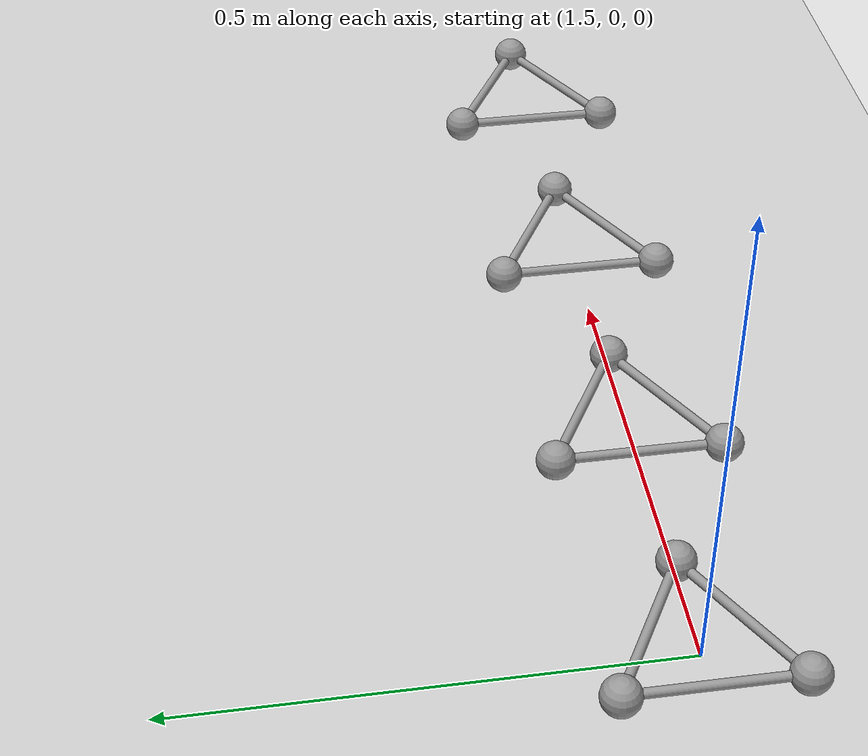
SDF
<sdf version="1.6">
 <world name="default">
  <include><uri>model://ground_plane</uri></include>
  <include><uri>model://sun</uri></include>
  <model name="triball_5">
   <pose>1.5 0 0 0 0 0</pose>
   <link name="link">
    <pose>0 0 0.02 0 0 0</pose>
    <inertial>
     <mass>0.060318578948924034</mass>
     <inertia>
      <ixx>0.000311243867376448</ixx>
      <iyy>0.000311243867376448</iyy>
      <izz>0.0006128367621210681</izz>
      <ixy>0.0</ixy>
      <ixz>0.0</ixz>
      <iyz>0.0</iyz>
     </inertia>
    </inertial>
    <sensor name="imu" type="imu"><always_on>true</always_on></sensor>
    <collision name="collision_a">
     <pose>0.09999999999999999 0 0  0 0 0</pose>
     <geometry><sphere><radius>0.02</radius></sphere></geometry>
     <surface><friction><ode><mu>0.9</mu><mu2>0.9</mu2><fdir1>1 0 0</fdir1></ode></friction></surface>
    </collision>
    <visual name="visual_a">
     <pose>0.09999999999999999 0 0  0 0 0</pose>
     <geometry><sphere><radius>0.02</radius></sphere></geometry>
     <material>
      <script><uri>file://media/materials/scripts/gazebo.material</uri><name>Gazebo/Grey</name></script>
     </material>
    </visual>
    <collision name="collision_a_to_b">
     <pose>0.024999999999999998 0.04330127018922193 0.0  -1.5707962969925737 -1.0471975511965974 1.047197525387029</pose>
     <geometry><cylinder><radius>0.005</radius><length>0.17320508075688773</length></cylinder></geometry>
     <surface><friction><ode><mu>0.9</mu><mu2>0.9</mu2></ode></friction></surface>
    </collision>
    <visual name="visual_a_to_b">
     <pose>0.024999999999999998 0.04330127018922193 0.0  -1.5707962969925737 -1.0471975511965974 1.047197525387029</pose>
     <geometry><cylinder><radius>0.005</radius><length>0.17320508075688773</length></cylinder></geometry>
     <material>
      <script><uri>file://media/materials/scripts/gazebo.material</uri><name>Gazebo/Grey</name></script>
     </material>
    </visual>
    <collision name="collision_a_to_c">
     <pose>0.024999999999999998 -0.04330127018922193 0.0  1.5707962969925737 -1.0471975511965974 -1.047197525387029</pose>
     <geometry><cylinder><radius>0.005</radius><length>0.17320508075688773</length></cylinder></geometry>
     <surface><friction><ode><mu>0.9</mu><mu2>0.9</mu2></ode></friction></surface>
    </collision>
    <visual name="visual_a_to_c">
     <pose>0.024999999999999998 -0.04330127018922193 0.0  1.5707962969925737 -1.0471975511965974 -1.047197525387029</pose>
     <geometry><cylinder><radius>0.005</radius><length>0.17320508075688773</length></cylinder></geometry>
     <material>
      <script><uri>file://media/materials/scripts/gazebo.material</uri><name>Gazebo/Grey</name></script>
     </material>
    </visual>
    <collision name="collision_b">
     <pose>-0.049999999999999996 0.08660254037844387 0  0 0 0</pose>
     <geometry><sphere><radius>0.02</radius></sphere></geometry>
     <surface><friction><ode><mu>0.9</mu><mu2>0.9</mu2><fdir1>1 0 0</fdir1></ode></friction></surface>
    </collision>
    <visual name="visual_b">
     <pose>-0.049999999999999996 0.08660254037844387 0  0 0 0</pose>
     <geometry><sphere><radius>0.02</radius></sphere></geometry>
     <material>
      <script><uri>file://media/materials/scripts/gazebo.material</uri><name>Gazebo/Grey</name></script>
     </material>
    </visual>
    <collision name="collision_b_to_c">
     <pose>-0.049999999999999996 0.0 0.0  1.5707963267948963 -0.0 0.0</pose>
     <geometry><cylinder><radius>0.005</radius><length>0.17320508075688773</length></cylinder></geometry>
     <surface><friction><ode><mu>0.9</mu><mu2>0.9</mu2></ode></friction></surface>
    </collision>
    <visual name="visual_b_to_c">
     <pose>-0.049999999999999996 0.0 0.0  1.5707963267948963 -0.0 0.0</pose>
     <geometry><cylinder><radius>0.005</radius><length>0.17320508075688773</length></cylinder></geometry>
     <material>
      <script><uri>file://media/materials/scripts/gazebo.material</uri><name>Gazebo/Grey</name></script>
     </material>
    </visual>
    <collision name="collision_c">
     <pose>-0.049999999999999996 -0.08660254037844387 0  0 0 0</pose>
     <geometry><sphere><radius>0.02</radius></sphere></geometry>
     <surface><friction><ode><mu>0.9</mu><mu2>0.9</mu2><fdir1>1 0 0</fdir1></ode></friction></surface>
    </collision>
    <visual name="visual_c">
     <pose>-0.049999999999999996 -0.08660254037844387 0  0 0 0</pose>
     <geometry><sphere><radius>0.02</radius></sphere></geometry>
     <material>
      <script><uri>file://media/materials/scripts/gazebo.material</uri><name>Gazebo/Grey</name></script>
     </material>
    </visual>
   </link>
   <plugin name="triball_5" filename="libInitialVelocityPlugin.so">
    <linear>0 15 0</linear>
    <angular>0 0 -103.125</angular>
   </plugin>
  </model>
  <model name="triball_6">
   <pose>1.7999999999999998 0 0 0 0 0</pose>
   <link name="link">
    <pose>0 0 0.02 0 0 0</pose>
    <inertial>
     <mass>0.060318578948924034</mass>
     <inertia>
      <ixx>0.000311243867376448</ixx>
      <iyy>0.000311243867376448</iyy>
      <izz>0.0006128367621210681</izz>
      <ixy>0.0</ixy>
      <ixz>0.0</ixz>
      <iyz>0.0</iyz>
     </inertia>
    </inertial>
    <sensor name="imu" type="imu"><always_on>true</always_on></sensor>
    <collision name="collision_a">
     <pose>0.09999999999999999 0 0  0 0 0</pose>
     <geometry><sphere><radius>0.02</radius></sphere></geometry>
     <surface><friction><ode><mu>0.9</mu><mu2>0.9</mu2><fdir1>1 0 0</fdir1></ode></friction></surface>
    </collision>
    <visual name="visual_a">
     <pose>0.09999999999999999 0 0  0 0 0</pose>
     <geometry><sphere><radius>0.02</radius></sphere></geometry>
     <material>
      <script><uri>file://media/materials/scripts/gazebo.material</uri><name>Gazebo/Grey</name></script>
     </material>
    </visual>
    <collision name="collision_a_to_b">
     <pose>0.024999999999999998 0.04330127018922193 0.0  -1.5707962969925737 -1.0471975511965974 1.047197525387029</pose>
     <geometry><cylinder><radius>0.005</radius><length>0.17320508075688773</length></cylinder></geometry>
     <surface><friction><ode><mu>0.9</mu><mu2>0.9</mu2></ode></friction></surface>
    </collision>
    <visual name="visual_a_to_b">
     <pose>0.024999999999999998 0.04330127018922193 0.0  -1.5707962969925737 -1.0471975511965974 1.047197525387029</pose>
     <geometry><cylinder><radius>0.005</radius><length>0.17320508075688773</length></cylinder></geometry>
     <material>
      <script><uri>file://media/materials/scripts/gazebo.material</uri><name>Gazebo/Grey</name></script>
     </material>
    </visual>
    <collision name="collision_a_to_c">
     <pose>0.024999999999999998 -0.04330127018922193 0.0  1.5707962969925737 -1.0471975511965974 -1.047197525387029</pose>
     <geometry><cylinder><radius>0.005</radius><length>0.17320508075688773</length></cylinder></geometry>
     <surface><friction><ode><mu>0.9</mu><mu2>0.9</mu2></ode></friction></surface>
    </collision>
    <visual name="visual_a_to_c">
     <pose>0.024999999999999998 -0.04330127018922193 0.0  1.5707962969925737 -1.0471975511965974 -1.047197525387029</pose>
     <geometry><cylinder><radius>0.005</radius><length>0.17320508075688773</length></cylinder></geometry>
     <material>
      <script><uri>file://media/materials/scripts/gazebo.material</uri><name>Gazebo/Grey</name></script>
     </material>
    </visual>
    <collision name="collision_b">
     <pose>-0.049999999999999996 0.08660254037844387 0  0 0 0</pose>
     <geometry><sphere><radius>0.02</radius></sphere></geometry>
     <surface><friction><ode><mu>0.9</mu><mu2>0.9</mu2><fdir1>1 0 0</fdir1></ode></friction></surface>
    </collision>
    <visual name="visual_b">
     <pose>-0.049999999999999996 0.08660254037844387 0  0 0 0</pose>
     <geometry><sphere><radius>0.02</radius></sphere></geometry>
     <material>
      <script><uri>file://media/materials/scripts/gazebo.material</uri><name>Gazebo/Grey</name></script>
     </material>
    </visual>
    <collision name="collision_b_to_c">
     <pose>-0.049999999999999996 0.0 0.0  1.5707963267948963 -0.0 0.0</pose>
     <geometry><cylinder><radius>0.005</radius><length>0.17320508075688773</length></cylinder></geometry>
     <surface><friction><ode><mu>0.9</mu><mu2>0.9</mu2></ode></friction></surface>
    </collision>
    <visual name="visual_b_to_c">
     <pose>-0.049999999999999996 0.0 0.0  1.5707963267948963 -0.0 0.0</pose>
     <geometry><cylinder><radius>0.005</radius><length>0.17320508075688773</length></cylinder></geometry>
     <material>
      <script><uri>file://media/materials/scripts/gazebo.material</uri><name>Gazebo/Grey</name></script>
     </material>
    </visual>
    <collision name="collision_c">
     <pose>-0.049999999999999996 -0.08660254037844387 0  0 0 0</pose>
     <geometry><sphere><radius>0.02</radius></sphere></geometry>
     <surface><friction><ode><mu>0.9</mu><mu2>0.9</mu2><fdir1>1 0 0</fdir1></ode></friction></surface>
    </collision>
    <visual name="visual_c">
     <pose>-0.049999999999999996 -0.08660254037844387 0  0 0 0</pose>
     <geometry><sphere><radius>0.02</radius></sphere></geometry>
     <material>
      <script><uri>file://media/materials/scripts/gazebo.material</uri><name>Gazebo/Grey</name></script>
     </material>
    </visual>
   </link>
   <plugin name="triball_6" filename="libInitialVelocityPlugin.so">
    <linear>0 15 0</linear>
    <angular>0 0 -93.75</angular>
   </plugin>
  </model>
  <model name="triball_7">
   <pose>2.1 0 0 0 0 0</pose>
   <link name="link">
    <pose>0 0 0.02 0 0 0</pose>
    <inertial>
     <mass>0.060318578948924034</mass>
     <inertia>
      <ixx>0.000311243867376448</ixx>
      <iyy>0.000311243867376448</iyy>
      <izz>0.0006128367621210681</izz>
      <ixy>0.0</ixy>
      <ixz>0.0</ixz>
      <iyz>0.0</iyz>
     </inertia>
    </inertial>
    <sensor name="imu" type="imu"><always_on>true</always_on></sensor>
    <collision name="collision_a">
     <pose>0.09999999999999999 0 0  0 0 0</pose>
     <geometry><sphere><radius>0.02</radius></sphere></geometry>
     <surface><friction><ode><mu>0.9</mu><mu2>0.9</mu2><fdir1>1 0 0</fdir1></ode></friction></surface>
    </collision>
    <visual name="visual_a">
     <pose>0.09999999999999999 0 0  0 0 0</pose>
     <geometry><sphere><radius>0.02</radius></sphere></geometry>
     <material>
      <script><uri>file://media/materials/scripts/gazebo.material</uri><name>Gazebo/Grey</name></script>
     </material>
    </visual>
    <collision name="collision_a_to_b">
     <pose>0.024999999999999998 0.04330127018922193 0.0  -1.5707962969925737 -1.0471975511965974 1.047197525387029</pose>
     <geometry><cylinder><radius>0.005</radius><length>0.17320508075688773</length></cylinder></geometry>
     <surface><friction><ode><mu>0.9</mu><mu2>0.9</mu2></ode></friction></surface>
    </collision>
    <visual name="visual_a_to_b">
     <pose>0.024999999999999998 0.04330127018922193 0.0  -1.5707962969925737 -1.0471975511965974 1.047197525387029</pose>
     <geometry><cylinder><radius>0.005</radius><length>0.17320508075688773</length></cylinder></geometry>
     <material>
      <script><uri>file://media/materials/scripts/gazebo.material</uri><name>Gazebo/Grey</name></script>
     </material>
    </visual>
    <collision name="collision_a_to_c">
     <pose>0.024999999999999998 -0.04330127018922193 0.0  1.5707962969925737 -1.0471975511965974 -1.047197525387029</pose>
     <geometry><cylinder><radius>0.005</radius><length>0.17320508075688773</length></cylinder></geometry>
     <surface><friction><ode><mu>0.9</mu><mu2>0.9</mu2></ode></friction></surface>
    </collision>
    <visual name="visual_a_to_c">
     <pose>0.024999999999999998 -0.04330127018922193 0.0  1.5707962969925737 -1.0471975511965974 -1.047197525387029</pose>
     <geometry><cylinder><radius>0.005</radius><length>0.17320508075688773</length></cylinder></geometry>
     <material>
      <script><uri>file://media/materials/scripts/gazebo.material</uri><name>Gazebo/Grey</name></script>
     </material>
    </visual>
    <collision name="collision_b">
     <pose>-0.049999999999999996 0.08660254037844387 0  0 0 0</pose>
     <geometry><sphere><radius>0.02</radius></sphere></geometry>
     <surface><friction><ode><mu>0.9</mu><mu2>0.9</mu2><fdir1>1 0 0</fdir1></ode></friction></surface>
    </collision>
    <visual name="visual_b">
     <pose>-0.049999999999999996 0.08660254037844387 0  0 0 0</pose>
     <geometry><sphere><radius>0.02</radius></sphere></geometry>
     <material>
      <script><uri>file://media/materials/scripts/gazebo.material</uri><name>Gazebo/Grey</name></script>
     </material>
    </visual>
    <collision name="collision_b_to_c">
     <pose>-0.049999999999999996 0.0 0.0  1.5707963267948963 -0.0 0.0</pose>
     <geometry><cylinder><radius>0.005</radius><length>0.17320508075688773</length></cylinder></geometry>
     <surface><friction><ode><mu>0.9</mu><mu2>0.9</mu2></ode></friction></surface>
    </collision>
    <visual name="visual_b_to_c">
     <pose>-0.049999999999999996 0.0 0.0  1.5707963267948963 -0.0 0.0</pose>
     <geometry><cylinder><radius>0.005</radius><length>0.17320508075688773</length></cylinder></geometry>
     <material>
      <script><uri>file://media/materials/scripts/gazebo.material</uri><name>Gazebo/Grey</name></script>
     </material>
    </visual>
    <collision name="collision_c">
     <pose>-0.049999999999999996 -0.08660254037844387 0  0 0 0</pose>
     <geometry><sphere><radius>0.02</radius></sphere></geometry>
     <surface><friction><ode><mu>0.9</mu><mu2>0.9</mu2><fdir1>1 0 0</fdir1></ode></friction></surface>
    </collision>
    <visual name="visual_c">
     <pose>-0.049999999999999996 -0.08660254037844387 0  0 0 0</pose>
     <geometry><sphere><radius>0.02</radius></sphere></geometry>
     <material>
      <script><uri>file://media/materials/scripts/gazebo.material</uri><name>Gazebo/Grey</name></script>
     </material>
    </visual>
   </link>
   <plugin name="triball_7" filename="libInitialVelocityPlugin.so">
    <linear>0 15 0</linear>
    <angular>0 0 -84.375</angular>
   </plugin>
  </model>
  <model name="triball_8">
   <pose>2.4 0 0 0 0 0</pose>
   <link name="link">
    <pose>0 0 0.02 0 0 0</pose>
    <inertial>
     <mass>0.060318578948924034</mass>
     <inertia>
      <ixx>0.000311243867376448</ixx>
      <iyy>0.000311243867376448</iyy>
      <izz>0.0006128367621210681</izz>
      <ixy>0.0</ixy>
      <ixz>0.0</ixz>
      <iyz>0.0</iyz>
     </inertia>
    </inertial>
    <sensor name="imu" type="imu"><always_on>true</always_on></sensor>
    <collision name="collision_a">
     <pose>0.09999999999999999 0 0  0 0 0</pose>
     <geometry><sphere><radius>0.02</radius></sphere></geometry>
     <surface><friction><ode><mu>0.9</mu><mu2>0.9</mu2><fdir1>1 0 0</fdir1></ode></friction></surface>
    </collision>
    <visual name="visual_a">
     <pose>0.09999999999999999 0 0  0 0 0</pose>
     <geometry><sphere><radius>0.02</radius></sphere></geometry>
     <material>
      <script><uri>file://media/materials/scripts/gazebo.material</uri><name>Gazebo/Grey</name></script>
     </material>
    </visual>
    <collision name="collision_a_to_b">
     <pose>0.024999999999999998 0.04330127018922193 0.0  -1.5707962969925737 -1.0471975511965974 1.047197525387029</pose>
     <geometry><cylinder><radius>0.005</radius><length>0.17320508075688773</length></cylinder></geometry>
     <surface><friction><ode><mu>0.9</mu><mu2>0.9</mu2></ode></friction></surface>
    </collision>
    <visual name="visual_a_to_b">
     <pose>0.024999999999999998 0.04330127018922193 0.0  -1.5707962969925737 -1.0471975511965974 1.047197525387029</pose>
     <geometry><cylinder><radius>0.005</radius><length>0.17320508075688773</length></cylinder></geometry>
     <material>
      <script><uri>file://media/materials/scripts/gazebo.material</uri><name>Gazebo/Grey</name></script>
     </material>
    </visual>
    <collision name="collision_a_to_c">
     <pose>0.024999999999999998 -0.04330127018922193 0.0  1.5707962969925737 -1.0471975511965974 -1.047197525387029</pose>
     <geometry><cylinder><radius>0.005</radius><length>0.17320508075688773</length></cylinder></geometry>
     <surface><friction><ode><mu>0.9</mu><mu2>0.9</mu2></ode></friction></surface>
    </collision>
    <visual name="visual_a_to_c">
     <pose>0.024999999999999998 -0.04330127018922193 0.0  1.5707962969925737 -1.0471975511965974 -1.047197525387029</pose>
     <geometry><cylinder><radius>0.005</radius><length>0.17320508075688773</length></cylinder></geometry>
     <material>
      <script><uri>file://media/materials/scripts/gazebo.material</uri><name>Gazebo/Grey</name></script>
     </material>
    </visual>
    <collision name="collision_b">
     <pose>-0.049999999999999996 0.08660254037844387 0  0 0 0</pose>
     <geometry><sphere><radius>0.02</radius></sphere></geometry>
     <surface><friction><ode><mu>0.9</mu><mu2>0.9</mu2><fdir1>1 0 0</fdir1></ode></friction></surface>
    </collision>
    <visual name="visual_b">
     <pose>-0.049999999999999996 0.08660254037844387 0  0 0 0</pose>
     <geometry><sphere><radius>0.02</radius></sphere></geometry>
     <material>
      <script><uri>file://media/materials/scripts/gazebo.material</uri><name>Gazebo/Grey</name></script>
     </material>
    </visual>
    <collision name="collision_b_to_c">
     <pose>-0.049999999999999996 0.0 0.0  1.5707963267948963 -0.0 0.0</pose>
     <geometry><cylinder><radius>0.005</radius><length>0.17320508075688773</length></cylinder></geometry>
     <surface><friction><ode><mu>0.9</mu><mu2>0.9</mu2></ode></friction></surface>
    </collision>
    <visual name="visual_b_to_c">
     <pose>-0.049999999999999996 0.0 0.0  1.5707963267948963 -0.0 0.0</pose>
     <geometry><cylinder><radius>0.005</radius><length>0.17320508075688773</length></cylinder></geometry>
     <material>
      <script><uri>file://media/materials/scripts/gazebo.material</uri><name>Gazebo/Grey</name></script>
     </material>
    </visual>
    <collision name="collision_c">
     <pose>-0.049999999999999996 -0.08660254037844387 0  0 0 0</pose>
     <geometry><sphere><radius>0.02</radius></sphere></geometry>
     <surface><friction><ode><mu>0.9</mu><mu2>0.9</mu2><fdir1>1 0 0</fdir1></ode></friction></surface>
    </collision>
    <visual name="visual_c">
     <pose>-0.049999999999999996 -0.08660254037844387 0  0 0 0</pose>
     <geometry><sphere><radius>0.02</radius></sphere></geometry>
     <material>
      <script><uri>file://media/materials/scripts/gazebo.material</uri><name>Gazebo/Grey</name></script>
     </material>
    </visual>
   </link>
   <plugin name="triball_8" filename="libInitialVelocityPlugin.so">
    <linear>0 15 0</linear>
    <angular>0 0 -75.0</angular>
   </plugin>
  </model>
 </world>
</sdf>
